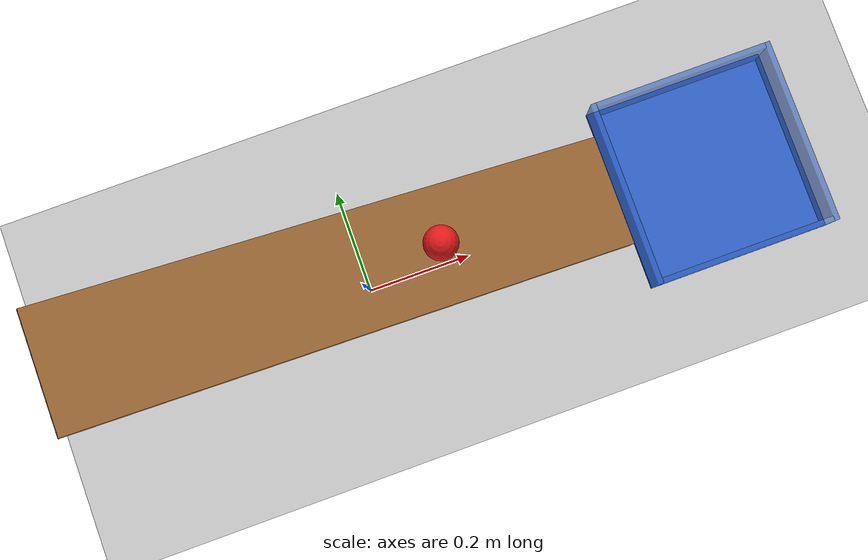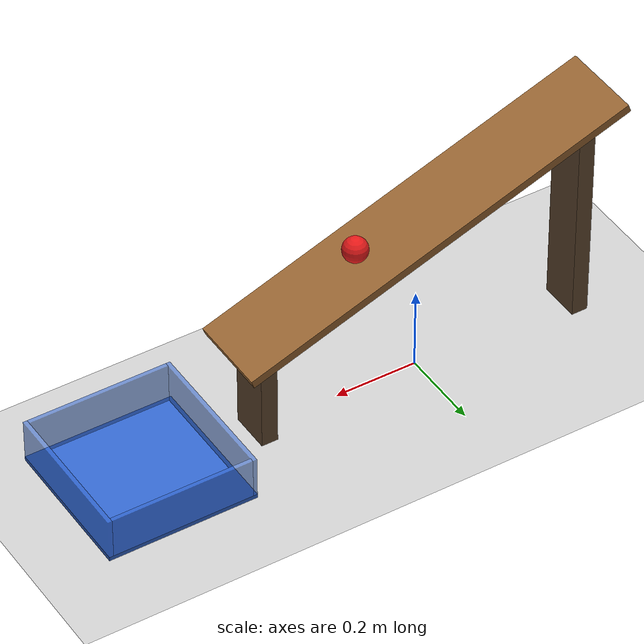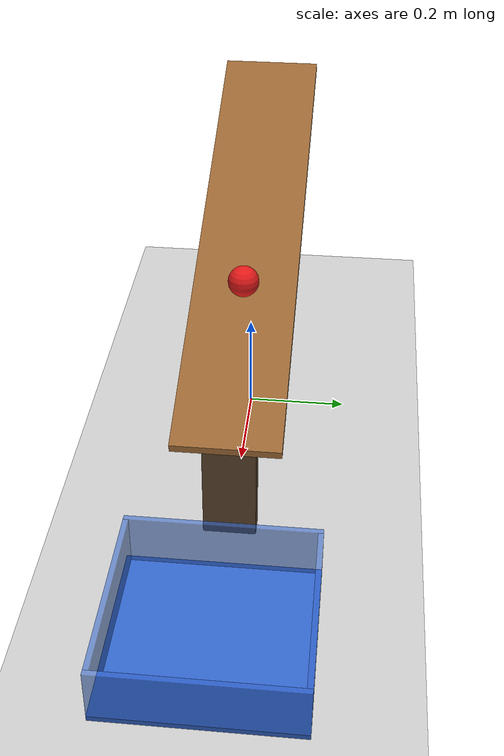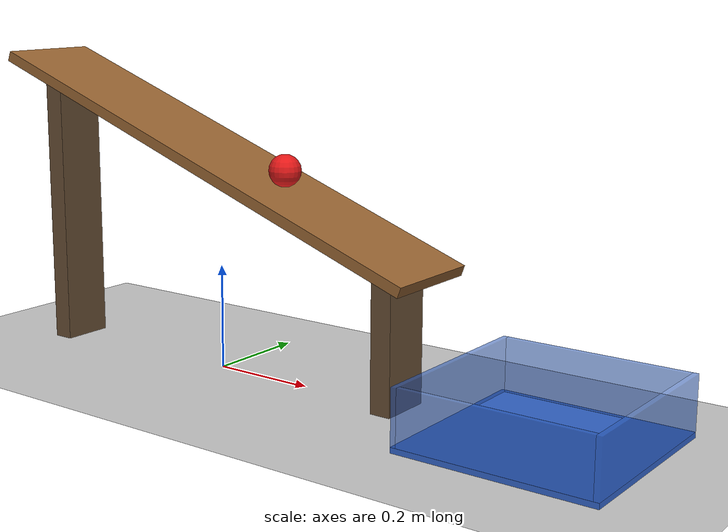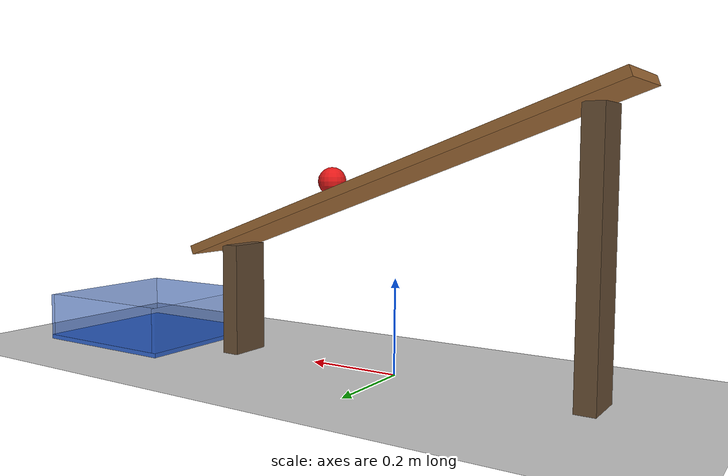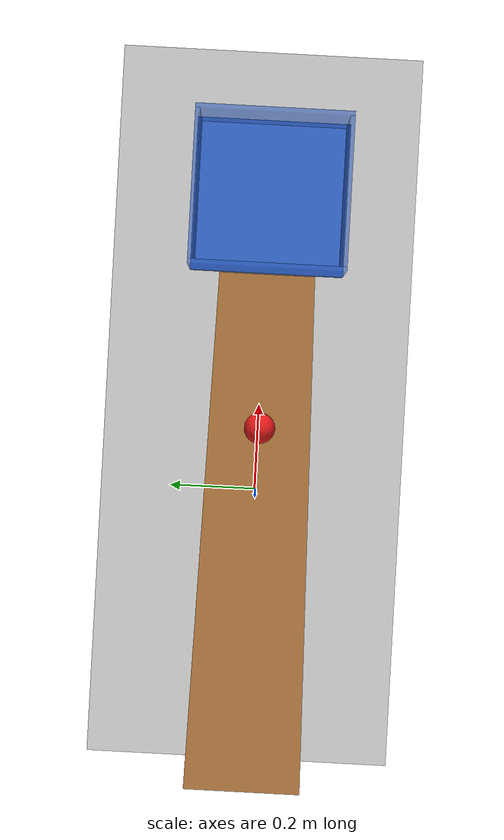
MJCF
<mujoco model="ball_ramp_cup">
  <option timestep="0.002" gravity="0 0 -9.81"/>

  <visual>
    <global offwidth="1280" offheight="720"/>
  </visual>

  <worldbody>
    <light name="sun" pos="0 0 3" dir="0 0 -1" directional="true"/>
    <geom name="floor" type="plane" size="3 3 0.1" rgba="0.8 0.8 0.8 1"/>

    <!-- Ramp: 1 m board tilted 20 deg, low end at x~0.47, z~0.25 -->
    <geom name="ramp_board" type="box" pos="0 0 0.41" euler="0 20 0" size="0.5 0.1 0.01" rgba="0.6 0.4 0.2 1"/>
    <geom name="ramp_post_high" type="box" pos="-0.4 0 0.27" size="0.02 0.05 0.27" rgba="0.4 0.3 0.2 1"/>
    <geom name="ramp_post_low" type="box" pos="0.4 0 0.125" size="0.02 0.05 0.125" rgba="0.4 0.3 0.2 1"/>

    <!-- Cup: open box, inner span x in [0.52, 0.86], y in [-0.17, 0.17], walls up to z=0.11 -->
    <body name="cup" pos="0.69 0 0">
      <geom name="cup_bottom" type="box" pos="0 0 0.005" size="0.18 0.18 0.005" friction="1 0.01 0.005" rgba="0.2 0.4 0.8 1"/>
      <geom name="cup_wall_px" type="box" pos="0.175 0 0.06" size="0.005 0.18 0.05" friction="1 0.01 0.005" rgba="0.2 0.4 0.8 0.6"/>
      <geom name="cup_wall_nx" type="box" pos="-0.175 0 0.06" size="0.005 0.18 0.05" friction="1 0.01 0.005" rgba="0.2 0.4 0.8 0.6"/>
      <geom name="cup_wall_py" type="box" pos="0 0.175 0.06" size="0.17 0.005 0.05" friction="1 0.01 0.005" rgba="0.2 0.4 0.8 0.6"/>
      <geom name="cup_wall_ny" type="box" pos="0 -0.175 0.06" size="0.17 0.005 0.05" friction="1 0.01 0.005" rgba="0.2 0.4 0.8 0.6"/>
    </body>

    <!-- Ball: starts resting on the ramp, 0.35 m up-slope from the low edge -->
    <body name="ball" pos="0.1547 0 0.397">
      <freejoint/>
      <geom name="ball" type="sphere" size="0.03" condim="6" friction="1 0.005 0.0001" rgba="0.9 0.1 0.1 1"/>
    </body>
  </worldbody>

  <keyframe>
    <key name="start" qpos="0.1547 0 0.397 1 0 0 0" qvel="0 0 0 0 0 0"/>
  </keyframe>
</mujoco>
